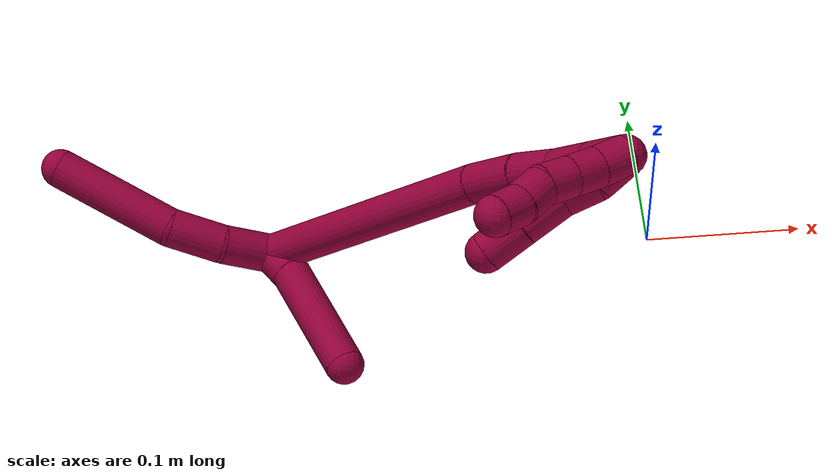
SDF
<sdf version="1.7">
 <world name="default">
  <model name="8">
   <static>0</static>
   <link name="8">
    <collision name="collision-cylinder-e_1_2_8">
     <pose>0.002663 -0.001929 0.016416 0.116984 0.159753 0.009375</pose>
     <geometry><cylinder><radius>0.0125</radius><length>0.033485</length></cylinder></geometry>
     <surface>
      <friction><ode><mu>1.16</mu><mu2>1.16</mu2><slip1>0</slip1><slip2>0</slip2></ode></friction>
      <contact><ode><kp>1e+06</kp><kd>1</kd><max_vel>0</max_vel><min_depth>0.001</min_depth></ode></contact>
     </surface>
    </collision>
    <visual name="visual-cylinder-e_1_2_8">
     <pose>0.002663 -0.001929 0.016416 0.116984 0.159753 0.009375</pose>
     <geometry><cylinder><radius>0.0125</radius><length>0.033485</length></cylinder></geometry>
     <material><ambient>0.584314 0 0.227451 1</ambient></material>
    </visual>
    <collision name="collision-cylinder-e_2_8_9">
     <pose>0.009093 -0.001895 0.049963 -0.114125 0.215083 -0.012334</pose>
     <geometry><cylinder><radius>0.0125</radius><length>0.035298</length></cylinder></geometry>
     <surface>
      <friction><ode><mu>1.16</mu><mu2>1.16</mu2><slip1>0</slip1><slip2>0</slip2></ode></friction>
      <contact><ode><kp>1e+06</kp><kd>1</kd><max_vel>0</max_vel><min_depth>0.001</min_depth></ode></contact>
     </surface>
    </collision>
    <visual name="visual-cylinder-e_2_8_9">
     <pose>0.009093 -0.001895 0.049963 -0.114125 0.215083 -0.012334</pose>
     <geometry><cylinder><radius>0.0125</radius><length>0.035298</length></cylinder></geometry>
     <material><ambient>0.584314 0 0.227451 1</ambient></material>
    </visual>
    <collision name="collision-cylinder-e_3_9_6">
     <pose>0.025401 0.015695 0.102415 -0.416525 0.313953 -0.066872</pose>
     <geometry><cylinder><radius>0.0125</radius><length>0.081217</length></cylinder></geometry>
     <surface>
      <friction><ode><mu>1.16</mu><mu2>1.16</mu2><slip1>0</slip1><slip2>0</slip2></ode></friction>
      <contact><ode><kp>1e+06</kp><kd>1</kd><max_vel>0</max_vel><min_depth>0.001</min_depth></ode></contact>
     </surface>
    </collision>
    <visual name="visual-cylinder-e_3_9_6">
     <pose>0.025401 0.015695 0.102415 -0.416525 0.313953 -0.066872</pose>
     <geometry><cylinder><radius>0.0125</radius><length>0.081217</length></cylinder></geometry>
     <material><ambient>0.584314 0 0.227451 1</ambient></material>
    </visual>
    <collision name="collision-cylinder-e_1_2_10">
     <pose>-0.003533 -0.008414 -0.005774 2.17222 -0.333302 -0.618386</pose>
     <geometry><cylinder><radius>0.0125</radius><length>0.021597</length></cylinder></geometry>
     <surface>
      <friction><ode><mu>1.16</mu><mu2>1.16</mu2><slip1>0</slip1><slip2>0</slip2></ode></friction>
      <contact><ode><kp>1e+06</kp><kd>1</kd><max_vel>0</max_vel><min_depth>0.001</min_depth></ode></contact>
     </surface>
    </collision>
    <visual name="visual-cylinder-e_1_2_10">
     <pose>-0.003533 -0.008414 -0.005774 2.17222 -0.333302 -0.618386</pose>
     <geometry><cylinder><radius>0.0125</radius><length>0.021597</length></cylinder></geometry>
     <material><ambient>0.584314 0 0.227451 1</ambient></material>
    </visual>
    <collision name="collision-cylinder-e_2_10_5">
     <pose>-0.026283 -0.047222 -0.027155 2.0452 -0.512342 -0.810414</pose>
     <geometry><cylinder><radius>0.0125</radius><length>0.078403</length></cylinder></geometry>
     <surface>
      <friction><ode><mu>1.16</mu><mu2>1.16</mu2><slip1>0</slip1><slip2>0</slip2></ode></friction>
      <contact><ode><kp>1e+06</kp><kd>1</kd><max_vel>0</max_vel><min_depth>0.001</min_depth></ode></contact>
     </surface>
    </collision>
    <visual name="visual-cylinder-e_2_10_5">
     <pose>-0.026283 -0.047222 -0.027155 2.0452 -0.512342 -0.810414</pose>
     <geometry><cylinder><radius>0.0125</radius><length>0.078403</length></cylinder></geometry>
     <material><ambient>0.584314 0 0.227451 1</ambient></material>
    </visual>
    <collision name="collision-cylinder-e_1_2_11">
     <pose>0.042978 -0.051934 -0.05263 2.36285 0.526524 1.16235</pose>
     <geometry><cylinder><radius>0.0125</radius><length>0.171045</length></cylinder></geometry>
     <surface>
      <friction><ode><mu>1.16</mu><mu2>1.16</mu2><slip1>0</slip1><slip2>0</slip2></ode></friction>
      <contact><ode><kp>1e+06</kp><kd>1</kd><max_vel>0</max_vel><min_depth>0.001</min_depth></ode></contact>
     </surface>
    </collision>
    <visual name="visual-cylinder-e_1_2_11">
     <pose>0.042978 -0.051934 -0.05263 2.36285 0.526524 1.16235</pose>
     <geometry><cylinder><radius>0.0125</radius><length>0.171045</length></cylinder></geometry>
     <material><ambient>0.584314 0 0.227451 1</ambient></material>
    </visual>
    <collision name="collision-cylinder-e_2_11_12">
     <pose>0.093489 -0.11559 -0.115914 2.30847 0.443896 0.943279</pose>
     <geometry><cylinder><radius>0.0125</radius><length>0.035081</length></cylinder></geometry>
     <surface>
      <friction><ode><mu>1.16</mu><mu2>1.16</mu2><slip1>0</slip1><slip2>0</slip2></ode></friction>
      <contact><ode><kp>1e+06</kp><kd>1</kd><max_vel>0</max_vel><min_depth>0.001</min_depth></ode></contact>
     </surface>
    </collision>
    <visual name="visual-cylinder-e_2_11_12">
     <pose>0.093489 -0.11559 -0.115914 2.30847 0.443896 0.943279</pose>
     <geometry><cylinder><radius>0.0125</radius><length>0.035081</length></cylinder></geometry>
     <material><ambient>0.584314 0 0.227451 1</ambient></material>
    </visual>
    <collision name="collision-cylinder-e_3_12_13">
     <pose>0.106 -0.137629 -0.135998 2.31136 0.34216 0.747201</pose>
     <geometry><cylinder><radius>0.0125</radius><length>0.029673</length></cylinder></geometry>
     <surface>
      <friction><ode><mu>1.16</mu><mu2>1.16</mu2><slip1>0</slip1><slip2>0</slip2></ode></friction>
      <contact><ode><kp>1e+06</kp><kd>1</kd><max_vel>0</max_vel><min_depth>0.001</min_depth></ode></contact>
     </surface>
    </collision>
    <visual name="visual-cylinder-e_3_12_13">
     <pose>0.106 -0.137629 -0.135998 2.31136 0.34216 0.747201</pose>
     <geometry><cylinder><radius>0.0125</radius><length>0.029673</length></cylinder></geometry>
     <material><ambient>0.584314 0 0.227451 1</ambient></material>
    </visual>
    <collision name="collision-cylinder-e_4_13_14">
     <pose>0.117551 -0.161148 -0.152582 2.06735 0.412586 0.67585</pose>
     <geometry><cylinder><radius>0.0125</radius><length>0.032785</length></cylinder></geometry>
     <surface>
      <friction><ode><mu>1.16</mu><mu2>1.16</mu2><slip1>0</slip1><slip2>0</slip2></ode></friction>
      <contact><ode><kp>1e+06</kp><kd>1</kd><max_vel>0</max_vel><min_depth>0.001</min_depth></ode></contact>
     </surface>
    </collision>
    <visual name="visual-cylinder-e_4_13_14">
     <pose>0.117551 -0.161148 -0.152582 2.06735 0.412586 0.67585</pose>
     <geometry><cylinder><radius>0.0125</radius><length>0.032785</length></cylinder></geometry>
     <material><ambient>0.584314 0 0.227451 1</ambient></material>
    </visual>
    <collision name="collision-cylinder-e_5_14_1">
     <pose>0.130327 -0.187424 -0.165848 2.00818 0.406008 0.625711</pose>
     <geometry><cylinder><radius>0.0125</radius><length>0.031416</length></cylinder></geometry>
     <surface>
      <friction><ode><mu>1.16</mu><mu2>1.16</mu2><slip1>0</slip1><slip2>0</slip2></ode></friction>
      <contact><ode><kp>1e+06</kp><kd>1</kd><max_vel>0</max_vel><min_depth>0.001</min_depth></ode></contact>
     </surface>
    </collision>
    <visual name="visual-cylinder-e_5_14_1">
     <pose>0.130327 -0.187424 -0.165848 2.00818 0.406008 0.625711</pose>
     <geometry><cylinder><radius>0.0125</radius><length>0.031416</length></cylinder></geometry>
     <material><ambient>0.584314 0 0.227451 1</ambient></material>
    </visual>
    <collision name="collision-cylinder-e_1_1_15">
     <pose>0.128022 -0.198882 -0.165007 -0.228087 -0.872808 0.106741</pose>
     <geometry><cylinder><radius>0.0125</radius><length>0.022214</length></cylinder></geometry>
     <surface>
      <friction><ode><mu>1.16</mu><mu2>1.16</mu2><slip1>0</slip1><slip2>0</slip2></ode></friction>
      <contact><ode><kp>1e+06</kp><kd>1</kd><max_vel>0</max_vel><min_depth>0.001</min_depth></ode></contact>
     </surface>
    </collision>
    <visual name="visual-cylinder-e_1_1_15">
     <pose>0.128022 -0.198882 -0.165007 -0.228087 -0.872808 0.106741</pose>
     <geometry><cylinder><radius>0.0125</radius><length>0.022214</length></cylinder></geometry>
     <material><ambient>0.584314 0 0.227451 1</ambient></material>
    </visual>
    <collision name="collision-cylinder-e_2_15_16">
     <pose>0.113368 -0.195443 -0.148656 -0.191795 -0.570604 0.056412</pose>
     <geometry><cylinder><radius>0.0125</radius><length>0.022751</length></cylinder></geometry>
     <surface>
      <friction><ode><mu>1.16</mu><mu2>1.16</mu2><slip1>0</slip1><slip2>0</slip2></ode></friction>
      <contact><ode><kp>1e+06</kp><kd>1</kd><max_vel>0</max_vel><min_depth>0.001</min_depth></ode></contact>
     </surface>
    </collision>
    <visual name="visual-cylinder-e_2_15_16">
     <pose>0.113368 -0.195443 -0.148656 -0.191795 -0.570604 0.056412</pose>
     <geometry><cylinder><radius>0.0125</radius><length>0.022751</length></cylinder></geometry>
     <material><ambient>0.584314 0 0.227451 1</ambient></material>
    </visual>
    <collision name="collision-cylinder-e_3_16_17">
     <pose>0.097474 -0.193438 -0.128653 -0.016998 -0.743321 0.006626</pose>
     <geometry><cylinder><radius>0.0125</radius><length>0.028814</length></cylinder></geometry>
     <surface>
      <friction><ode><mu>1.16</mu><mu2>1.16</mu2><slip1>0</slip1><slip2>0</slip2></ode></friction>
      <contact><ode><kp>1e+06</kp><kd>1</kd><max_vel>0</max_vel><min_depth>0.001</min_depth></ode></contact>
     </surface>
    </collision>
    <visual name="visual-cylinder-e_3_16_17">
     <pose>0.097474 -0.193438 -0.128653 -0.016998 -0.743321 0.006626</pose>
     <geometry><cylinder><radius>0.0125</radius><length>0.028814</length></cylinder></geometry>
     <material><ambient>0.584314 0 0.227451 1</ambient></material>
    </visual>
    <collision name="collision-cylinder-e_4_17_4">
     <pose>0.078638 -0.192401 -0.108635 -0.090743 -0.765667 0.036563</pose>
     <geometry><cylinder><radius>0.0125</radius><length>0.026221</length></cylinder></geometry>
     <surface>
      <friction><ode><mu>1.16</mu><mu2>1.16</mu2><slip1>0</slip1><slip2>0</slip2></ode></friction>
      <contact><ode><kp>1e+06</kp><kd>1</kd><max_vel>0</max_vel><min_depth>0.001</min_depth></ode></contact>
     </surface>
    </collision>
    <visual name="visual-cylinder-e_4_17_4">
     <pose>0.078638 -0.192401 -0.108635 -0.090743 -0.765667 0.036563</pose>
     <geometry><cylinder><radius>0.0125</radius><length>0.026221</length></cylinder></geometry>
     <material><ambient>0.584314 0 0.227451 1</ambient></material>
    </visual>
    <collision name="collision-cylinder-e_1_1_18">
     <pose>0.133311 -0.203895 -0.163124 0.367156 -0.327807 -0.061395</pose>
     <geometry><cylinder><radius>0.0125</radius><length>0.02</length></cylinder></geometry>
     <surface>
      <friction><ode><mu>1.16</mu><mu2>1.16</mu2><slip1>0</slip1><slip2>0</slip2></ode></friction>
      <contact><ode><kp>1e+06</kp><kd>1</kd><max_vel>0</max_vel><min_depth>0.001</min_depth></ode></contact>
     </surface>
    </collision>
    <visual name="visual-cylinder-e_1_1_18">
     <pose>0.133311 -0.203895 -0.163124 0.367156 -0.327807 -0.061395</pose>
     <geometry><cylinder><radius>0.0125</radius><length>0.02</length></cylinder></geometry>
     <material><ambient>0.584314 0 0.227451 1</ambient></material>
    </visual>
    <collision name="collision-cylinder-e_2_18_19">
     <pose>0.127819 -0.21156 -0.145534 0.453508 -0.229253 -0.053114</pose>
     <geometry><cylinder><radius>0.0125</radius><length>0.02</length></cylinder></geometry>
     <surface>
      <friction><ode><mu>1.16</mu><mu2>1.16</mu2><slip1>0</slip1><slip2>0</slip2></ode></friction>
      <contact><ode><kp>1e+06</kp><kd>1</kd><max_vel>0</max_vel><min_depth>0.001</min_depth></ode></contact>
     </surface>
    </collision>
    <visual name="visual-cylinder-e_2_18_19">
     <pose>0.127819 -0.21156 -0.145534 0.453508 -0.229253 -0.053114</pose>
     <geometry><cylinder><radius>0.0125</radius><length>0.02</length></cylinder></geometry>
     <material><ambient>0.584314 0 0.227451 1</ambient></material>
    </visual>
    <collision name="collision-cylinder-e_3_19_20">
     <pose>0.123581 -0.220219 -0.128014 0.464547 -0.197824 -0.046938</pose>
     <geometry><cylinder><radius>0.0125</radius><length>0.02</length></cylinder></geometry>
     <surface>
      <friction><ode><mu>1.16</mu><mu2>1.16</mu2><slip1>0</slip1><slip2>0</slip2></ode></friction>
      <contact><ode><kp>1e+06</kp><kd>1</kd><max_vel>0</max_vel><min_depth>0.001</min_depth></ode></contact>
     </surface>
    </collision>
    <visual name="visual-cylinder-e_3_19_20">
     <pose>0.123581 -0.220219 -0.128014 0.464547 -0.197824 -0.046938</pose>
     <geometry><cylinder><radius>0.0125</radius><length>0.02</length></cylinder></geometry>
     <material><ambient>0.584314 0 0.227451 1</ambient></material>
    </visual>
    <collision name="collision-cylinder-e_4_20_21">
     <pose>0.117325 -0.230565 -0.112454 0.719511 -0.443469 -0.169183</pose>
     <geometry><cylinder><radius>0.0125</radius><length>0.02</length></cylinder></geometry>
     <surface>
      <friction><ode><mu>1.16</mu><mu2>1.16</mu2><slip1>0</slip1><slip2>0</slip2></ode></friction>
      <contact><ode><kp>1e+06</kp><kd>1</kd><max_vel>0</max_vel><min_depth>0.001</min_depth></ode></contact>
     </surface>
    </collision>
    <visual name="visual-cylinder-e_4_20_21">
     <pose>0.117325 -0.230565 -0.112454 0.719511 -0.443469 -0.169183</pose>
     <geometry><cylinder><radius>0.0125</radius><length>0.02</length></cylinder></geometry>
     <material><ambient>0.584314 0 0.227451 1</ambient></material>
    </visual>
    <collision name="collision-cylinder-e_5_21_3">
     <pose>0.110844 -0.242176 -0.097712 0.618655 -0.220838 -0.070835</pose>
     <geometry><cylinder><radius>0.0125</radius><length>0.02</length></cylinder></geometry>
     <surface>
      <friction><ode><mu>1.16</mu><mu2>1.16</mu2><slip1>0</slip1><slip2>0</slip2></ode></friction>
      <contact><ode><kp>1e+06</kp><kd>1</kd><max_vel>0</max_vel><min_depth>0.001</min_depth></ode></contact>
     </surface>
    </collision>
    <visual name="visual-cylinder-e_5_21_3">
     <pose>0.110844 -0.242176 -0.097712 0.618655 -0.220838 -0.070835</pose>
     <geometry><cylinder><radius>0.0125</radius><length>0.02</length></cylinder></geometry>
     <material><ambient>0.584314 0 0.227451 1</ambient></material>
    </visual>
    <collision name="collision-sphere-3">
     <pose>0.108654 -0.247834 -0.089763 0 -0 0</pose>
     <geometry><sphere><radius>0.0125</radius></sphere></geometry>
     <surface>
      <friction><ode><mu>1.16</mu><mu2>1.16</mu2><slip1>0</slip1><slip2>0</slip2></ode></friction>
      <contact><ode><kp>1e+06</kp><kd>1</kd><max_vel>0</max_vel><min_depth>0.001</min_depth></ode></contact>
     </surface>
    </collision>
    <visual name="visual-sphere-3">
     <pose>0.108654 -0.247834 -0.089763 0 -0 0</pose>
     <geometry><sphere><radius>0.0125</radius></sphere></geometry>
     <material><ambient>0.584314 0 0.227451 1</ambient></material>
    </visual>
    <collision name="collision-sphere-21">
     <pose>0.113034 -0.236517 -0.10566 0 -0 0</pose>
     <geometry><sphere><radius>0.0125</radius></sphere></geometry>
     <surface>
      <friction><ode><mu>1.16</mu><mu2>1.16</mu2><slip1>0</slip1><slip2>0</slip2></ode></friction>
      <contact><ode><kp>1e+06</kp><kd>1</kd><max_vel>0</max_vel><min_depth>0.001</min_depth></ode></contact>
     </surface>
    </collision>
    <visual name="visual-sphere-21">
     <pose>0.113034 -0.236517 -0.10566 0 -0 0</pose>
     <geometry><sphere><radius>0.0125</radius></sphere></geometry>
     <material><ambient>0.584314 0 0.227451 1</ambient></material>
    </visual>
    <collision name="collision-sphere-20">
     <pose>0.121616 -0.224612 -0.119248 0 -0 0</pose>
     <geometry><sphere><radius>0.0125</radius></sphere></geometry>
     <surface>
      <friction><ode><mu>1.16</mu><mu2>1.16</mu2><slip1>0</slip1><slip2>0</slip2></ode></friction>
      <contact><ode><kp>1e+06</kp><kd>1</kd><max_vel>0</max_vel><min_depth>0.001</min_depth></ode></contact>
     </surface>
    </collision>
    <visual name="visual-sphere-20">
     <pose>0.121616 -0.224612 -0.119248 0 -0 0</pose>
     <geometry><sphere><radius>0.0125</radius></sphere></geometry>
     <material><ambient>0.584314 0 0.227451 1</ambient></material>
    </visual>
    <collision name="collision-sphere-19">
     <pose>0.125547 -0.215826 -0.13678 0 -0 0</pose>
     <geometry><sphere><radius>0.0125</radius></sphere></geometry>
     <surface>
      <friction><ode><mu>1.16</mu><mu2>1.16</mu2><slip1>0</slip1><slip2>0</slip2></ode></friction>
      <contact><ode><kp>1e+06</kp><kd>1</kd><max_vel>0</max_vel><min_depth>0.001</min_depth></ode></contact>
     </surface>
    </collision>
    <visual name="visual-sphere-19">
     <pose>0.125547 -0.215826 -0.13678 0 -0 0</pose>
     <geometry><sphere><radius>0.0125</radius></sphere></geometry>
     <material><ambient>0.584314 0 0.227451 1</ambient></material>
    </visual>
    <collision name="collision-sphere-5">
     <pose>-0.045501 -0.077617 -0.042764 0 -0 0</pose>
     <geometry><sphere><radius>0.0125</radius></sphere></geometry>
     <surface>
      <friction><ode><mu>1.16</mu><mu2>1.16</mu2><slip1>0</slip1><slip2>0</slip2></ode></friction>
      <contact><ode><kp>1e+06</kp><kd>1</kd><max_vel>0</max_vel><min_depth>0.001</min_depth></ode></contact>
     </surface>
    </collision>
    <visual name="visual-sphere-5">
     <pose>-0.045501 -0.077617 -0.042764 0 -0 0</pose>
     <geometry><sphere><radius>0.0125</radius></sphere></geometry>
     <material><ambient>0.584314 0 0.227451 1</ambient></material>
    </visual>
    <collision name="collision-sphere-10">
     <pose>-0.007066 -0.016827 -0.011547 0 -0 0</pose>
     <geometry><sphere><radius>0.0125</radius></sphere></geometry>
     <surface>
      <friction><ode><mu>1.16</mu><mu2>1.16</mu2><slip1>0</slip1><slip2>0</slip2></ode></friction>
      <contact><ode><kp>1e+06</kp><kd>1</kd><max_vel>0</max_vel><min_depth>0.001</min_depth></ode></contact>
     </surface>
    </collision>
    <visual name="visual-sphere-10">
     <pose>-0.007066 -0.016827 -0.011547 0 -0 0</pose>
     <geometry><sphere><radius>0.0125</radius></sphere></geometry>
     <material><ambient>0.584314 0 0.227451 1</ambient></material>
    </visual>
    <collision name="collision-sphere-6">
     <pose>0.037942 0.031321 0.137736 0 -0 0</pose>
     <geometry><sphere><radius>0.0125</radius></sphere></geometry>
     <surface>
      <friction><ode><mu>1.16</mu><mu2>1.16</mu2><slip1>0</slip1><slip2>0</slip2></ode></friction>
      <contact><ode><kp>1e+06</kp><kd>1</kd><max_vel>0</max_vel><min_depth>0.001</min_depth></ode></contact>
     </surface>
    </collision>
    <visual name="visual-sphere-6">
     <pose>0.037942 0.031321 0.137736 0 -0 0</pose>
     <geometry><sphere><radius>0.0125</radius></sphere></geometry>
     <material><ambient>0.584314 0 0.227451 1</ambient></material>
    </visual>
    <collision name="collision-sphere-9">
     <pose>0.01286 6.8e-05 0.067093 0 -0 0</pose>
     <geometry><sphere><radius>0.0125</radius></sphere></geometry>
     <surface>
      <friction><ode><mu>1.16</mu><mu2>1.16</mu2><slip1>0</slip1><slip2>0</slip2></ode></friction>
      <contact><ode><kp>1e+06</kp><kd>1</kd><max_vel>0</max_vel><min_depth>0.001</min_depth></ode></contact>
     </surface>
    </collision>
    <visual name="visual-sphere-9">
     <pose>0.01286 6.8e-05 0.067093 0 -0 0</pose>
     <geometry><sphere><radius>0.0125</radius></sphere></geometry>
     <material><ambient>0.584314 0 0.227451 1</ambient></material>
    </visual>
    <collision name="collision-sphere-2">
     <geometry><sphere><radius>0.0125</radius></sphere></geometry>
     <surface>
      <friction><ode><mu>1.16</mu><mu2>1.16</mu2><slip1>0</slip1><slip2>0</slip2></ode></friction>
      <contact><ode><kp>1e+06</kp><kd>1</kd><max_vel>0</max_vel><min_depth>0.001</min_depth></ode></contact>
     </surface>
    </collision>
    <visual name="visual-sphere-2">
     <geometry><sphere><radius>0.0125</radius></sphere></geometry>
     <material><ambient>0.584314 0 0.227451 1</ambient></material>
    </visual>
    <collision name="collision-sphere-8">
     <pose>0.005327 -0.003859 0.032833 0 -0 0</pose>
     <geometry><sphere><radius>0.0125</radius></sphere></geometry>
     <surface>
      <friction><ode><mu>1.16</mu><mu2>1.16</mu2><slip1>0</slip1><slip2>0</slip2></ode></friction>
      <contact><ode><kp>1e+06</kp><kd>1</kd><max_vel>0</max_vel><min_depth>0.001</min_depth></ode></contact>
     </surface>
    </collision>
    <visual name="visual-sphere-8">
     <pose>0.005327 -0.003859 0.032833 0 -0 0</pose>
     <geometry><sphere><radius>0.0125</radius></sphere></geometry>
     <material><ambient>0.584314 0 0.227451 1</ambient></material>
    </visual>
    <collision name="collision-sphere-11">
     <pose>0.085956 -0.103868 -0.10526 0 -0 0</pose>
     <geometry><sphere><radius>0.0125</radius></sphere></geometry>
     <surface>
      <friction><ode><mu>1.16</mu><mu2>1.16</mu2><slip1>0</slip1><slip2>0</slip2></ode></friction>
      <contact><ode><kp>1e+06</kp><kd>1</kd><max_vel>0</max_vel><min_depth>0.001</min_depth></ode></contact>
     </surface>
    </collision>
    <visual name="visual-sphere-11">
     <pose>0.085956 -0.103868 -0.10526 0 -0 0</pose>
     <geometry><sphere><radius>0.0125</radius></sphere></geometry>
     <material><ambient>0.584314 0 0.227451 1</ambient></material>
    </visual>
    <collision name="collision-sphere-12">
     <pose>0.101022 -0.127313 -0.126568 0 -0 0</pose>
     <geometry><sphere><radius>0.0125</radius></sphere></geometry>
     <surface>
      <friction><ode><mu>1.16</mu><mu2>1.16</mu2><slip1>0</slip1><slip2>0</slip2></ode></friction>
      <contact><ode><kp>1e+06</kp><kd>1</kd><max_vel>0</max_vel><min_depth>0.001</min_depth></ode></contact>
     </surface>
    </collision>
    <visual name="visual-sphere-12">
     <pose>0.101022 -0.127313 -0.126568 0 -0 0</pose>
     <geometry><sphere><radius>0.0125</radius></sphere></geometry>
     <material><ambient>0.584314 0 0.227451 1</ambient></material>
    </visual>
    <collision name="collision-sphere-13">
     <pose>0.110978 -0.147945 -0.145428 0 -0 0</pose>
     <geometry><sphere><radius>0.0125</radius></sphere></geometry>
     <surface>
      <friction><ode><mu>1.16</mu><mu2>1.16</mu2><slip1>0</slip1><slip2>0</slip2></ode></friction>
      <contact><ode><kp>1e+06</kp><kd>1</kd><max_vel>0</max_vel><min_depth>0.001</min_depth></ode></contact>
     </surface>
    </collision>
    <visual name="visual-sphere-13">
     <pose>0.110978 -0.147945 -0.145428 0 -0 0</pose>
     <geometry><sphere><radius>0.0125</radius></sphere></geometry>
     <material><ambient>0.584314 0 0.227451 1</ambient></material>
    </visual>
    <collision name="collision-sphere-14">
     <pose>0.124123 -0.174351 -0.159735 0 -0 0</pose>
     <geometry><sphere><radius>0.0125</radius></sphere></geometry>
     <surface>
      <friction><ode><mu>1.16</mu><mu2>1.16</mu2><slip1>0</slip1><slip2>0</slip2></ode></friction>
      <contact><ode><kp>1e+06</kp><kd>1</kd><max_vel>0</max_vel><min_depth>0.001</min_depth></ode></contact>
     </surface>
    </collision>
    <visual name="visual-sphere-14">
     <pose>0.124123 -0.174351 -0.159735 0 -0 0</pose>
     <geometry><sphere><radius>0.0125</radius></sphere></geometry>
     <material><ambient>0.584314 0 0.227451 1</ambient></material>
    </visual>
    <collision name="collision-sphere-1">
     <pose>0.136531 -0.200496 -0.171961 0 -0 0</pose>
     <geometry><sphere><radius>0.0125</radius></sphere></geometry>
     <surface>
      <friction><ode><mu>1.16</mu><mu2>1.16</mu2><slip1>0</slip1><slip2>0</slip2></ode></friction>
      <contact><ode><kp>1e+06</kp><kd>1</kd><max_vel>0</max_vel><min_depth>0.001</min_depth></ode></contact>
     </surface>
    </collision>
    <visual name="visual-sphere-1">
     <pose>0.136531 -0.200496 -0.171961 0 -0 0</pose>
     <geometry><sphere><radius>0.0125</radius></sphere></geometry>
     <material><ambient>0.584314 0 0.227451 1</ambient></material>
    </visual>
    <collision name="collision-sphere-18">
     <pose>0.130092 -0.207293 -0.154288 0 -0 0</pose>
     <geometry><sphere><radius>0.0125</radius></sphere></geometry>
     <surface>
      <friction><ode><mu>1.16</mu><mu2>1.16</mu2><slip1>0</slip1><slip2>0</slip2></ode></friction>
      <contact><ode><kp>1e+06</kp><kd>1</kd><max_vel>0</max_vel><min_depth>0.001</min_depth></ode></contact>
     </surface>
    </collision>
    <visual name="visual-sphere-18">
     <pose>0.130092 -0.207293 -0.154288 0 -0 0</pose>
     <geometry><sphere><radius>0.0125</radius></sphere></geometry>
     <material><ambient>0.584314 0 0.227451 1</ambient></material>
    </visual>
    <collision name="collision-sphere-15">
     <pose>0.119512 -0.197268 -0.158054 0 -0 0</pose>
     <geometry><sphere><radius>0.0125</radius></sphere></geometry>
     <surface>
      <friction><ode><mu>1.16</mu><mu2>1.16</mu2><slip1>0</slip1><slip2>0</slip2></ode></friction>
      <contact><ode><kp>1e+06</kp><kd>1</kd><max_vel>0</max_vel><min_depth>0.001</min_depth></ode></contact>
     </surface>
    </collision>
    <visual name="visual-sphere-15">
     <pose>0.119512 -0.197268 -0.158054 0 -0 0</pose>
     <geometry><sphere><radius>0.0125</radius></sphere></geometry>
     <material><ambient>0.584314 0 0.227451 1</ambient></material>
    </visual>
    <collision name="collision-sphere-16">
     <pose>0.107223 -0.193618 -0.139258 0 -0 0</pose>
     <geometry><sphere><radius>0.0125</radius></sphere></geometry>
     <surface>
      <friction><ode><mu>1.16</mu><mu2>1.16</mu2><slip1>0</slip1><slip2>0</slip2></ode></friction>
      <contact><ode><kp>1e+06</kp><kd>1</kd><max_vel>0</max_vel><min_depth>0.001</min_depth></ode></contact>
     </surface>
    </collision>
    <visual name="visual-sphere-16">
     <pose>0.107223 -0.193618 -0.139258 0 -0 0</pose>
     <geometry><sphere><radius>0.0125</radius></sphere></geometry>
     <material><ambient>0.584314 0 0.227451 1</ambient></material>
    </visual>
    <collision name="collision-sphere-17">
     <pose>0.087724 -0.193258 -0.118048 0 -0 0</pose>
     <geometry><sphere><radius>0.0125</radius></sphere></geometry>
     <surface>
      <friction><ode><mu>1.16</mu><mu2>1.16</mu2><slip1>0</slip1><slip2>0</slip2></ode></friction>
      <contact><ode><kp>1e+06</kp><kd>1</kd><max_vel>0</max_vel><min_depth>0.001</min_depth></ode></contact>
     </surface>
    </collision>
    <visual name="visual-sphere-17">
     <pose>0.087724 -0.193258 -0.118048 0 -0 0</pose>
     <geometry><sphere><radius>0.0125</radius></sphere></geometry>
     <material><ambient>0.584314 0 0.227451 1</ambient></material>
    </visual>
    <collision name="collision-sphere-4">
     <pose>0.069552 -0.191545 -0.099222 0 -0 0</pose>
     <geometry><sphere><radius>0.0125</radius></sphere></geometry>
     <surface>
      <friction><ode><mu>1.16</mu><mu2>1.16</mu2><slip1>0</slip1><slip2>0</slip2></ode></friction>
      <contact><ode><kp>1e+06</kp><kd>1</kd><max_vel>0</max_vel><min_depth>0.001</min_depth></ode></contact>
     </surface>
    </collision>
    <visual name="visual-sphere-4">
     <pose>0.069552 -0.191545 -0.099222 0 -0 0</pose>
     <geometry><sphere><radius>0.0125</radius></sphere></geometry>
     <material><ambient>0.584314 0 0.227451 1</ambient></material>
    </visual>
    <inertial>
     <pose>0.059482 -0.096781 -0.060639 0 -0 0</pose>
     <mass>0.75</mass>
     <inertia>
      <ixx>0.000569</ixx>
      <ixy>0</ixy>
      <ixz>0</ixz>
      <iyy>0.000376</iyy>
      <iyz>0</iyz>
      <izz>8.9e-05</izz>
     </inertia>
    </inertial>
   </link>
   <pose>-0.244882 0.001483 0.011976 -1.25133 -0.930393 1.28124</pose>
  </model>
 </world>
</sdf>
